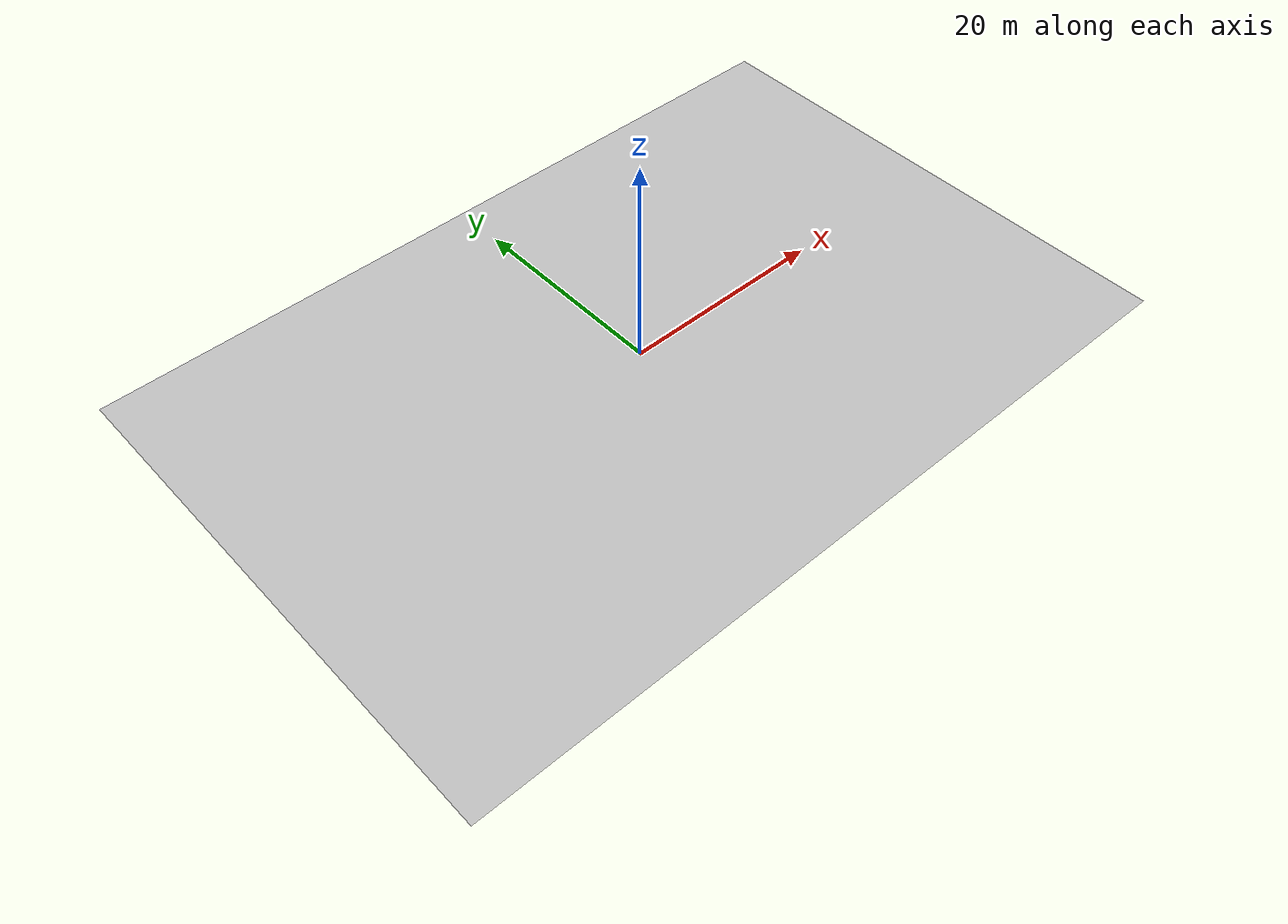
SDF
<sdf version="1.7">
  <model name="concrete_ground" canonical_link="concrete_ground_link">
    <link name="concrete_ground">
      <visual name="visual">
        <pose>0 0 0 1.5708 0 0</pose>
        <geometry>
          <mesh>
            <uri>model://concrete_ground/meshes/concrete_ground.obj</uri>
            <scale>1 1 1</scale>
          </mesh>
        </geometry>
      </visual>
    </link>
  </model>
</sdf>
